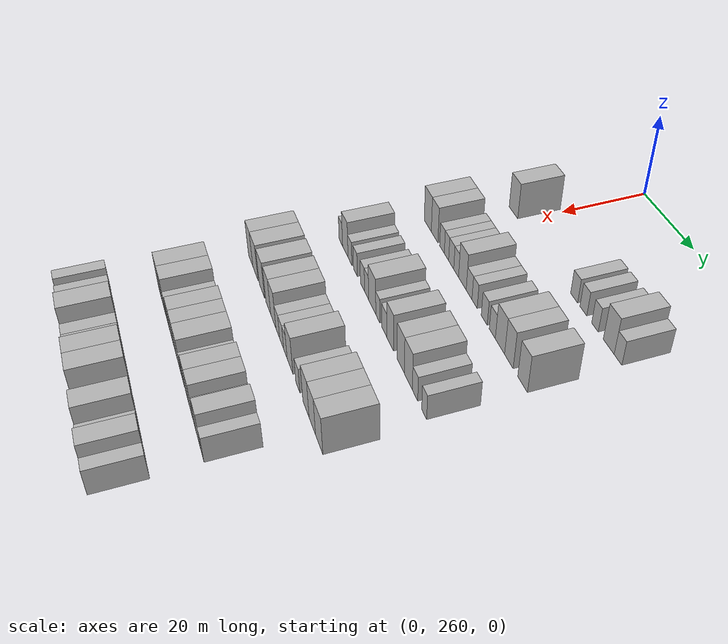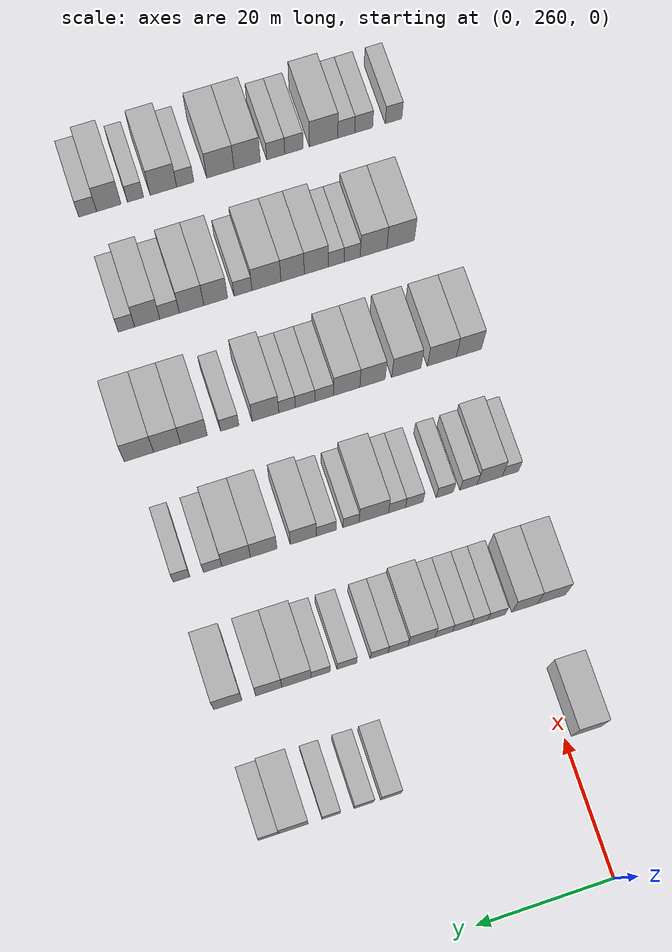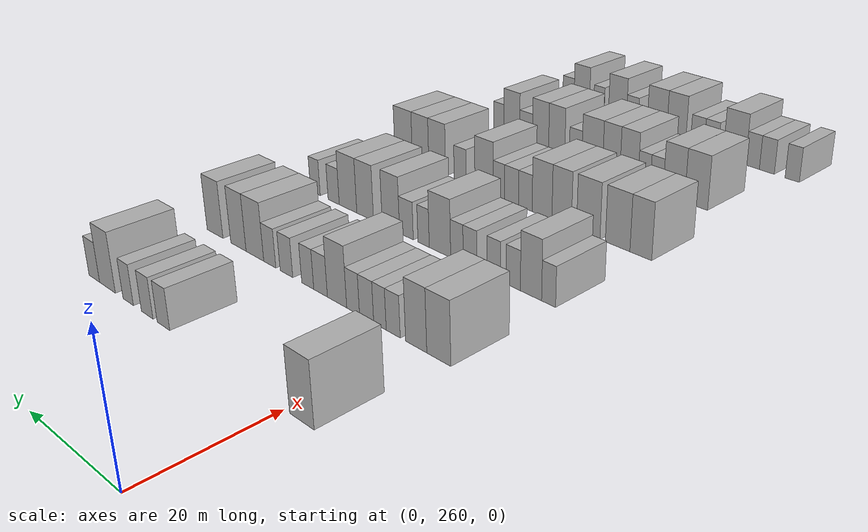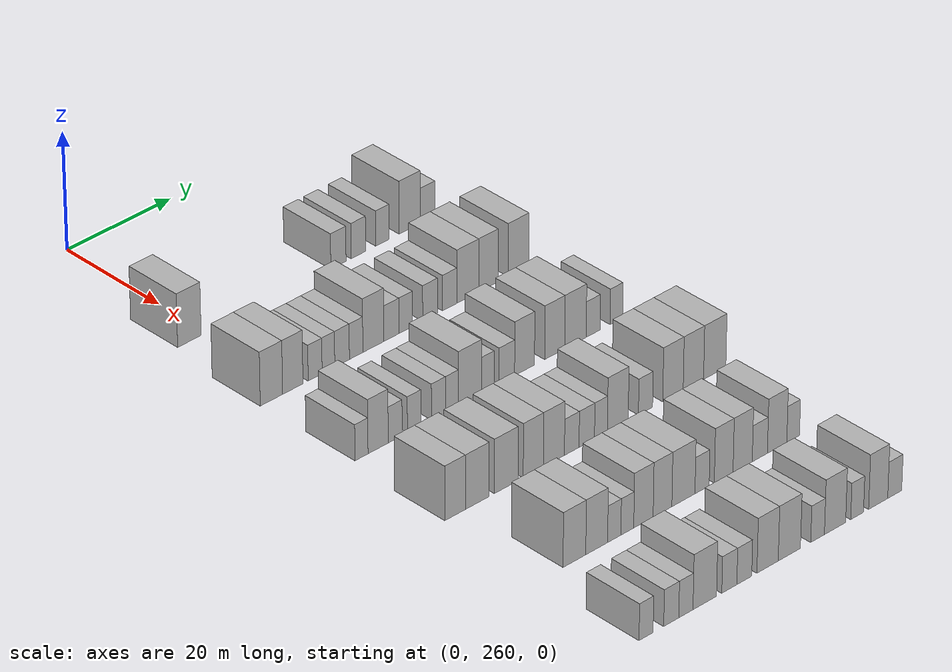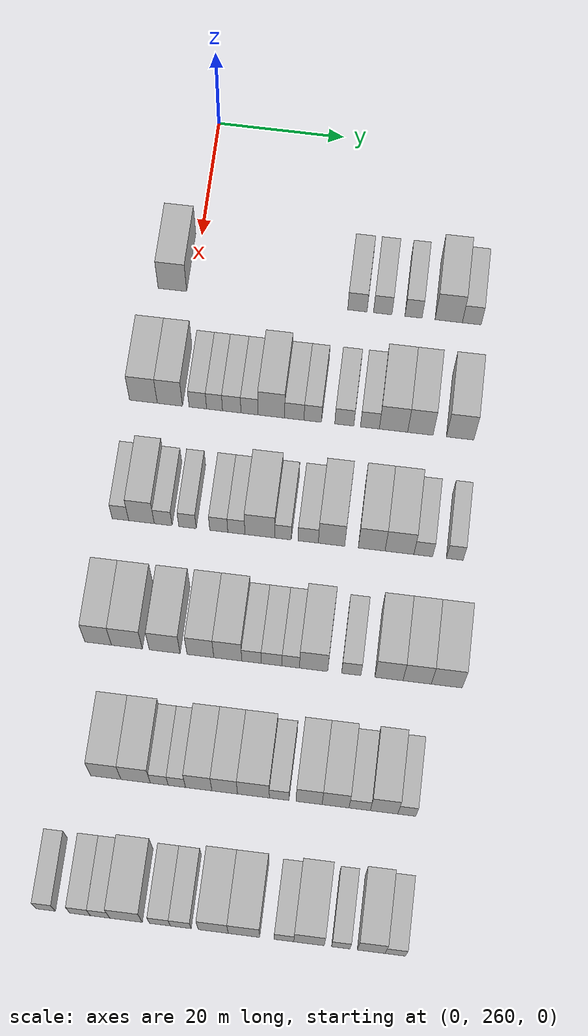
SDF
<sdf version="1.6">
 <world name="default">
  <model name="building_147">
   <static>1</static>
   <pose>25.0000 256.7633 0 0.000000 0.000000 0.000000</pose>
   <link name="link">
    <pose>0 0 4.50 0 0 0</pose>
    <collision name="collision"><geometry><box><size>10.0000 4.4512 9.0000</size></box></geometry></collision>
    <visual name="visual">
     <cast_shadows>0</cast_shadows>
     <geometry><box><size>10.0000 4.4512 9.0000</size></box></geometry>
     <material>
      <script>
       <uri>model://HANNAS_wall/materials/scripts</uri>
       <uri>model://HANNAS_wall/materials/textures</uri>
       <name>vrc/HANNAS_wall</name>
      </script>
     </material>
    </visual>
   </link>
  </model>
  <model name="building_148">
   <static>1</static>
   <pose>25.0000 285.4569 0 0.000000 0.000000 0.000000</pose>
   <link name="link">
    <pose>0 0 3.00 0 0 0</pose>
    <collision name="collision"><geometry><box><size>10.0000 2.9786 6.0000</size></box></geometry></collision>
    <visual name="visual">
     <cast_shadows>0</cast_shadows>
     <geometry><box><size>10.0000 2.9786 6.0000</size></box></geometry>
     <material>
      <script>
       <uri>model://HANNAS_wall/materials/scripts</uri>
       <uri>model://HANNAS_wall/materials/textures</uri>
       <name>vrc/HANNAS_wall</name>
      </script>
     </material>
    </visual>
   </link>
  </model>
  <model name="building_149">
   <static>1</static>
   <pose>25.0000 289.3695 0 0.000000 0.000000 0.000000</pose>
   <link name="link">
    <pose>0 0 3.00 0 0 0</pose>
    <collision name="collision"><geometry><box><size>10.0000 2.8466 6.0000</size></box></geometry></collision>
    <visual name="visual">
     <cast_shadows>0</cast_shadows>
     <geometry><box><size>10.0000 2.8466 6.0000</size></box></geometry>
     <material>
      <script>
       <uri>model://HANNAS_wall/materials/scripts</uri>
       <uri>model://HANNAS_wall/materials/textures</uri>
       <name>vrc/HANNAS_wall</name>
      </script>
     </material>
    </visual>
   </link>
  </model>
  <model name="building_150">
   <static>1</static>
   <pose>25.0000 294.1161 0 0.000000 0.000000 0.000000</pose>
   <link name="link">
    <pose>0 0 3.00 0 0 0</pose>
    <collision name="collision"><geometry><box><size>10.0000 2.6467 6.0000</size></box></geometry></collision>
    <visual name="visual">
     <cast_shadows>0</cast_shadows>
     <geometry><box><size>10.0000 2.6467 6.0000</size></box></geometry>
     <material>
      <script>
       <uri>model://HANNAS_wall/materials/scripts</uri>
       <uri>model://HANNAS_wall/materials/textures</uri>
       <name>vrc/HANNAS_wall</name>
      </script>
     </material>
    </visual>
   </link>
  </model>
  <model name="building_151">
   <static>1</static>
   <pose>25.0000 299.5389 0 0.000000 0.000000 0.000000</pose>
   <link name="link">
    <pose>0 0 4.50 0 0 0</pose>
    <collision name="collision"><geometry><box><size>10.0000 4.1988 9.0000</size></box></geometry></collision>
    <visual name="visual">
     <cast_shadows>0</cast_shadows>
     <geometry><box><size>10.0000 4.1988 9.0000</size></box></geometry>
     <material>
      <script>
       <uri>model://HANNAS_wall/materials/scripts</uri>
       <uri>model://HANNAS_wall/materials/textures</uri>
       <name>vrc/HANNAS_wall</name>
      </script>
     </material>
    </visual>
   </link>
  </model>
  <model name="building_152">
   <static>1</static>
   <pose>25.0000 303.0917 0 0.000000 0.000000 0.000000</pose>
   <link name="link">
    <pose>0 0 3.00 0 0 0</pose>
    <collision name="collision"><geometry><box><size>10.0000 2.9068 6.0000</size></box></geometry></collision>
    <visual name="visual">
     <cast_shadows>0</cast_shadows>
     <geometry><box><size>10.0000 2.9068 6.0000</size></box></geometry>
     <material>
      <script>
       <uri>model://HANNAS_wall/materials/scripts</uri>
       <uri>model://HANNAS_wall/materials/textures</uri>
       <name>vrc/HANNAS_wall</name>
      </script>
     </material>
    </visual>
   </link>
  </model>
  <model name="building_320">
   <static>1</static>
   <pose>44.0000 255.0883 0 0.000000 0.000000 0.000000</pose>
   <link name="link">
    <pose>0 0 4.50 0 0 0</pose>
    <collision name="collision"><geometry><box><size>10.0000 4.2238 9.0000</size></box></geometry></collision>
    <visual name="visual">
     <cast_shadows>0</cast_shadows>
     <geometry><box><size>10.0000 4.2238 9.0000</size></box></geometry>
     <material>
      <script>
       <uri>model://HANNAS_wall/materials/scripts</uri>
       <uri>model://HANNAS_wall/materials/textures</uri>
       <name>vrc/HANNAS_wall</name>
      </script>
     </material>
    </visual>
   </link>
  </model>
  <model name="building_321">
   <static>1</static>
   <pose>44.0000 259.1254 0 0.000000 0.000000 0.000000</pose>
   <link name="link">
    <pose>0 0 4.50 0 0 0</pose>
    <collision name="collision"><geometry><box><size>10.0000 3.8503 9.0000</size></box></geometry></collision>
    <visual name="visual">
     <cast_shadows>0</cast_shadows>
     <geometry><box><size>10.0000 3.8503 9.0000</size></box></geometry>
     <material>
      <script>
       <uri>model://HANNAS_wall/materials/scripts</uri>
       <uri>model://HANNAS_wall/materials/textures</uri>
       <name>vrc/HANNAS_wall</name>
      </script>
     </material>
    </visual>
   </link>
  </model>
  <model name="building_322">
   <static>1</static>
   <pose>44.0000 263.3785 0 0.000000 0.000000 0.000000</pose>
   <link name="link">
    <pose>0 0 3.00 0 0 0</pose>
    <collision name="collision"><geometry><box><size>10.0000 2.6558 6.0000</size></box></geometry></collision>
    <visual name="visual">
     <cast_shadows>0</cast_shadows>
     <geometry><box><size>10.0000 2.6558 6.0000</size></box></geometry>
     <material>
      <script>
       <uri>model://HANNAS_wall/materials/scripts</uri>
       <uri>model://HANNAS_wall/materials/textures</uri>
       <name>vrc/HANNAS_wall</name>
      </script>
     </material>
    </visual>
   </link>
  </model>
  <model name="building_323">
   <static>1</static>
   <pose>44.0000 265.9158 0 0.000000 0.000000 0.000000</pose>
   <link name="link">
    <pose>0 0 3.00 0 0 0</pose>
    <collision name="collision"><geometry><box><size>10.0000 2.4188 6.0000</size></box></geometry></collision>
    <visual name="visual">
     <cast_shadows>0</cast_shadows>
     <geometry><box><size>10.0000 2.4188 6.0000</size></box></geometry>
     <material>
      <script>
       <uri>model://HANNAS_wall/materials/scripts</uri>
       <uri>model://HANNAS_wall/materials/textures</uri>
       <name>vrc/HANNAS_wall</name>
      </script>
     </material>
    </visual>
   </link>
  </model>
  <model name="building_324">
   <static>1</static>
   <pose>44.0000 268.5272 0 0.000000 0.000000 0.000000</pose>
   <link name="link">
    <pose>0 0 3.00 0 0 0</pose>
    <collision name="collision"><geometry><box><size>10.0000 2.8040 6.0000</size></box></geometry></collision>
    <visual name="visual">
     <cast_shadows>0</cast_shadows>
     <geometry><box><size>10.0000 2.8040 6.0000</size></box></geometry>
     <material>
      <script>
       <uri>model://HANNAS_wall/materials/scripts</uri>
       <uri>model://HANNAS_wall/materials/textures</uri>
       <name>vrc/HANNAS_wall</name>
      </script>
     </material>
    </visual>
   </link>
  </model>
  <model name="building_325">
   <static>1</static>
   <pose>44.0000 271.2257 0 0.000000 0.000000 0.000000</pose>
   <link name="link">
    <pose>0 0 3.00 0 0 0</pose>
    <collision name="collision"><geometry><box><size>10.0000 2.5931 6.0000</size></box></geometry></collision>
    <visual name="visual">
     <cast_shadows>0</cast_shadows>
     <geometry><box><size>10.0000 2.5931 6.0000</size></box></geometry>
     <material>
      <script>
       <uri>model://HANNAS_wall/materials/scripts</uri>
       <uri>model://HANNAS_wall/materials/textures</uri>
       <name>vrc/HANNAS_wall</name>
      </script>
     </material>
    </visual>
   </link>
  </model>
  <model name="building_326">
   <static>1</static>
   <pose>44.0000 274.5366 0 0.000000 0.000000 0.000000</pose>
   <link name="link">
    <pose>0 0 4.50 0 0 0</pose>
    <collision name="collision"><geometry><box><size>10.0000 4.0287 9.0000</size></box></geometry></collision>
    <visual name="visual">
     <cast_shadows>0</cast_shadows>
     <geometry><box><size>10.0000 4.0287 9.0000</size></box></geometry>
     <material>
      <script>
       <uri>model://HANNAS_wall/materials/scripts</uri>
       <uri>model://HANNAS_wall/materials/textures</uri>
       <name>vrc/HANNAS_wall</name>
      </script>
     </material>
    </visual>
   </link>
  </model>
  <model name="building_327">
   <static>1</static>
   <pose>44.0000 278.0159 0 0.000000 0.000000 0.000000</pose>
   <link name="link">
    <pose>0 0 3.00 0 0 0</pose>
    <collision name="collision"><geometry><box><size>10.0000 2.9299 6.0000</size></box></geometry></collision>
    <visual name="visual">
     <cast_shadows>0</cast_shadows>
     <geometry><box><size>10.0000 2.9299 6.0000</size></box></geometry>
     <material>
      <script>
       <uri>model://HANNAS_wall/materials/scripts</uri>
       <uri>model://HANNAS_wall/materials/textures</uri>
       <name>vrc/HANNAS_wall</name>
      </script>
     </material>
    </visual>
   </link>
  </model>
  <model name="building_328">
   <static>1</static>
   <pose>44.0000 280.8010 0 0.000000 0.000000 0.000000</pose>
   <link name="link">
    <pose>0 0 3.00 0 0 0</pose>
    <collision name="collision"><geometry><box><size>10.0000 2.6403 6.0000</size></box></geometry></collision>
    <visual name="visual">
     <cast_shadows>0</cast_shadows>
     <geometry><box><size>10.0000 2.6403 6.0000</size></box></geometry>
     <material>
      <script>
       <uri>model://HANNAS_wall/materials/scripts</uri>
       <uri>model://HANNAS_wall/materials/textures</uri>
       <name>vrc/HANNAS_wall</name>
      </script>
     </material>
    </visual>
   </link>
  </model>
  <model name="building_329">
   <static>1</static>
   <pose>44.0000 285.5626 0 0.000000 0.000000 0.000000</pose>
   <link name="link">
    <pose>0 0 3.00 0 0 0</pose>
    <collision name="collision"><geometry><box><size>10.0000 2.8829 6.0000</size></box></geometry></collision>
    <visual name="visual">
     <cast_shadows>0</cast_shadows>
     <geometry><box><size>10.0000 2.8829 6.0000</size></box></geometry>
     <material>
      <script>
       <uri>model://HANNAS_wall/materials/scripts</uri>
       <uri>model://HANNAS_wall/materials/textures</uri>
       <name>vrc/HANNAS_wall</name>
      </script>
     </material>
    </visual>
   </link>
  </model>
  <model name="building_330">
   <static>1</static>
   <pose>44.0000 289.4255 0 0.000000 0.000000 0.000000</pose>
   <link name="link">
    <pose>0 0 3.00 0 0 0</pose>
    <collision name="collision"><geometry><box><size>10.0000 2.8429 6.0000</size></box></geometry></collision>
    <visual name="visual">
     <cast_shadows>0</cast_shadows>
     <geometry><box><size>10.0000 2.8429 6.0000</size></box></geometry>
     <material>
      <script>
       <uri>model://HANNAS_wall/materials/scripts</uri>
       <uri>model://HANNAS_wall/materials/textures</uri>
       <name>vrc/HANNAS_wall</name>
      </script>
     </material>
    </visual>
   </link>
  </model>
  <model name="building_331">
   <static>1</static>
   <pose>44.0000 292.9833 0 0.000000 0.000000 0.000000</pose>
   <link name="link">
    <pose>0 0 4.50 0 0 0</pose>
    <collision name="collision"><geometry><box><size>10.0000 4.2728 9.0000</size></box></geometry></collision>
    <visual name="visual">
     <cast_shadows>0</cast_shadows>
     <geometry><box><size>10.0000 4.2728 9.0000</size></box></geometry>
     <material>
      <script>
       <uri>model://HANNAS_wall/materials/scripts</uri>
       <uri>model://HANNAS_wall/materials/textures</uri>
       <name>vrc/HANNAS_wall</name>
      </script>
     </material>
    </visual>
   </link>
  </model>
  <model name="building_332">
   <static>1</static>
   <pose>44.0000 297.0333 0 0.000000 0.000000 0.000000</pose>
   <link name="link">
    <pose>0 0 4.50 0 0 0</pose>
    <collision name="collision"><geometry><box><size>10.0000 3.8272 9.0000</size></box></geometry></collision>
    <visual name="visual">
     <cast_shadows>0</cast_shadows>
     <geometry><box><size>10.0000 3.8272 9.0000</size></box></geometry>
     <material>
      <script>
       <uri>model://HANNAS_wall/materials/scripts</uri>
       <uri>model://HANNAS_wall/materials/textures</uri>
       <name>vrc/HANNAS_wall</name>
      </script>
     </material>
    </visual>
   </link>
  </model>
  <model name="building_333">
   <static>1</static>
   <pose>44.0000 303.0104 0 0.000000 0.000000 0.000000</pose>
   <link name="link">
    <pose>0 0 4.50 0 0 0</pose>
    <collision name="collision"><geometry><box><size>10.0000 4.1269 9.0000</size></box></geometry></collision>
    <visual name="visual">
     <cast_shadows>0</cast_shadows>
     <geometry><box><size>10.0000 4.1269 9.0000</size></box></geometry>
     <material>
      <script>
       <uri>model://HANNAS_wall/materials/scripts</uri>
       <uri>model://HANNAS_wall/materials/textures</uri>
       <name>vrc/HANNAS_wall</name>
      </script>
     </material>
    </visual>
   </link>
  </model>
  <model name="building_483">
   <static>1</static>
   <pose>63.0000 254.5296 0 0.000000 0.000000 0.000000</pose>
   <link name="link">
    <pose>0 0 3.00 0 0 0</pose>
    <collision name="collision"><geometry><box><size>10.0000 2.4531 6.0000</size></box></geometry></collision>
    <visual name="visual">
     <cast_shadows>0</cast_shadows>
     <geometry><box><size>10.0000 2.4531 6.0000</size></box></geometry>
     <material>
      <script>
       <uri>model://HANNAS_wall/materials/scripts</uri>
       <uri>model://HANNAS_wall/materials/textures</uri>
       <name>vrc/HANNAS_wall</name>
      </script>
     </material>
    </visual>
   </link>
  </model>
  <model name="building_484">
   <static>1</static>
   <pose>63.0000 257.6646 0 0.000000 0.000000 0.000000</pose>
   <link name="link">
    <pose>0 0 4.50 0 0 0</pose>
    <collision name="collision"><geometry><box><size>10.0000 3.8170 9.0000</size></box></geometry></collision>
    <visual name="visual">
     <cast_shadows>0</cast_shadows>
     <geometry><box><size>10.0000 3.8170 9.0000</size></box></geometry>
     <material>
      <script>
       <uri>model://HANNAS_wall/materials/scripts</uri>
       <uri>model://HANNAS_wall/materials/textures</uri>
       <name>vrc/HANNAS_wall</name>
      </script>
     </material>
    </visual>
   </link>
  </model>
  <model name="building_485">
   <static>1</static>
   <pose>63.0000 260.8975 0 0.000000 0.000000 0.000000</pose>
   <link name="link">
    <pose>0 0 3.00 0 0 0</pose>
    <collision name="collision"><geometry><box><size>10.0000 2.6487 6.0000</size></box></geometry></collision>
    <visual name="visual">
     <cast_shadows>0</cast_shadows>
     <geometry><box><size>10.0000 2.6487 6.0000</size></box></geometry>
     <material>
      <script>
       <uri>model://HANNAS_wall/materials/scripts</uri>
       <uri>model://HANNAS_wall/materials/textures</uri>
       <name>vrc/HANNAS_wall</name>
      </script>
     </material>
    </visual>
   </link>
  </model>
  <model name="building_486">
   <static>1</static>
   <pose>63.0000 264.5124 0 0.000000 0.000000 0.000000</pose>
   <link name="link">
    <pose>0 0 3.00 0 0 0</pose>
    <collision name="collision"><geometry><box><size>10.0000 2.5810 6.0000</size></box></geometry></collision>
    <visual name="visual">
     <cast_shadows>0</cast_shadows>
     <geometry><box><size>10.0000 2.5810 6.0000</size></box></geometry>
     <material>
      <script>
       <uri>model://HANNAS_wall/materials/scripts</uri>
       <uri>model://HANNAS_wall/materials/textures</uri>
       <name>vrc/HANNAS_wall</name>
      </script>
     </material>
    </visual>
   </link>
  </model>
  <model name="building_487">
   <static>1</static>
   <pose>63.0000 269.1421 0 0.000000 0.000000 0.000000</pose>
   <link name="link">
    <pose>0 0 3.00 0 0 0</pose>
    <collision name="collision"><geometry><box><size>10.0000 2.6784 6.0000</size></box></geometry></collision>
    <visual name="visual">
     <cast_shadows>0</cast_shadows>
     <geometry><box><size>10.0000 2.6784 6.0000</size></box></geometry>
     <material>
      <script>
       <uri>model://HANNAS_wall/materials/scripts</uri>
       <uri>model://HANNAS_wall/materials/textures</uri>
       <name>vrc/HANNAS_wall</name>
      </script>
     </material>
    </visual>
   </link>
  </model>
  <model name="building_488">
   <static>1</static>
   <pose>63.0000 271.7498 0 0.000000 0.000000 0.000000</pose>
   <link name="link">
    <pose>0 0 3.00 0 0 0</pose>
    <collision name="collision"><geometry><box><size>10.0000 2.5370 6.0000</size></box></geometry></collision>
    <visual name="visual">
     <cast_shadows>0</cast_shadows>
     <geometry><box><size>10.0000 2.5370 6.0000</size></box></geometry>
     <material>
      <script>
       <uri>model://HANNAS_wall/materials/scripts</uri>
       <uri>model://HANNAS_wall/materials/textures</uri>
       <name>vrc/HANNAS_wall</name>
      </script>
     </material>
    </visual>
   </link>
  </model>
  <model name="building_489">
   <static>1</static>
   <pose>63.0000 275.2367 0 0.000000 0.000000 0.000000</pose>
   <link name="link">
    <pose>0 0 4.50 0 0 0</pose>
    <collision name="collision"><geometry><box><size>10.0000 4.4369 9.0000</size></box></geometry></collision>
    <visual name="visual">
     <cast_shadows>0</cast_shadows>
     <geometry><box><size>10.0000 4.4369 9.0000</size></box></geometry>
     <material>
      <script>
       <uri>model://HANNAS_wall/materials/scripts</uri>
       <uri>model://HANNAS_wall/materials/textures</uri>
       <name>vrc/HANNAS_wall</name>
      </script>
     </material>
    </visual>
   </link>
  </model>
  <model name="building_490">
   <static>1</static>
   <pose>63.0000 278.6613 0 0.000000 0.000000 0.000000</pose>
   <link name="link">
    <pose>0 0 3.00 0 0 0</pose>
    <collision name="collision"><geometry><box><size>10.0000 2.4122 6.0000</size></box></geometry></collision>
    <visual name="visual">
     <cast_shadows>0</cast_shadows>
     <geometry><box><size>10.0000 2.4122 6.0000</size></box></geometry>
     <material>
      <script>
       <uri>model://HANNAS_wall/materials/scripts</uri>
       <uri>model://HANNAS_wall/materials/textures</uri>
       <name>vrc/HANNAS_wall</name>
      </script>
     </material>
    </visual>
   </link>
  </model>
  <model name="building_491">
   <static>1</static>
   <pose>63.0000 282.3653 0 0.000000 0.000000 0.000000</pose>
   <link name="link">
    <pose>0 0 3.00 0 0 0</pose>
    <collision name="collision"><geometry><box><size>10.0000 2.9959 6.0000</size></box></geometry></collision>
    <visual name="visual">
     <cast_shadows>0</cast_shadows>
     <geometry><box><size>10.0000 2.9959 6.0000</size></box></geometry>
     <material>
      <script>
       <uri>model://HANNAS_wall/materials/scripts</uri>
       <uri>model://HANNAS_wall/materials/textures</uri>
       <name>vrc/HANNAS_wall</name>
      </script>
     </material>
    </visual>
   </link>
  </model>
  <model name="building_492">
   <static>1</static>
   <pose>63.0000 285.8084 0 0.000000 0.000000 0.000000</pose>
   <link name="link">
    <pose>0 0 4.50 0 0 0</pose>
    <collision name="collision"><geometry><box><size>10.0000 3.8903 9.0000</size></box></geometry></collision>
    <visual name="visual">
     <cast_shadows>0</cast_shadows>
     <geometry><box><size>10.0000 3.8903 9.0000</size></box></geometry>
     <material>
      <script>
       <uri>model://HANNAS_wall/materials/scripts</uri>
       <uri>model://HANNAS_wall/materials/textures</uri>
       <name>vrc/HANNAS_wall</name>
      </script>
     </material>
    </visual>
   </link>
  </model>
  <model name="building_493">
   <static>1</static>
   <pose>63.0000 291.7232 0 0.000000 0.000000 0.000000</pose>
   <link name="link">
    <pose>0 0 4.50 0 0 0</pose>
    <collision name="collision"><geometry><box><size>10.0000 3.9393 9.0000</size></box></geometry></collision>
    <visual name="visual">
     <cast_shadows>0</cast_shadows>
     <geometry><box><size>10.0000 3.9393 9.0000</size></box></geometry>
     <material>
      <script>
       <uri>model://HANNAS_wall/materials/scripts</uri>
       <uri>model://HANNAS_wall/materials/textures</uri>
       <name>vrc/HANNAS_wall</name>
      </script>
     </material>
    </visual>
   </link>
  </model>
  <model name="building_494">
   <static>1</static>
   <pose>63.0000 295.8154 0 0.000000 0.000000 0.000000</pose>
   <link name="link">
    <pose>0 0 4.50 0 0 0</pose>
    <collision name="collision"><geometry><box><size>10.0000 4.2451 9.0000</size></box></geometry></collision>
    <visual name="visual">
     <cast_shadows>0</cast_shadows>
     <geometry><box><size>10.0000 4.2451 9.0000</size></box></geometry>
     <material>
      <script>
       <uri>model://HANNAS_wall/materials/scripts</uri>
       <uri>model://HANNAS_wall/materials/textures</uri>
       <name>vrc/HANNAS_wall</name>
      </script>
     </material>
    </visual>
   </link>
  </model>
  <model name="building_495">
   <static>1</static>
   <pose>63.0000 299.3187 0 0.000000 0.000000 0.000000</pose>
   <link name="link">
    <pose>0 0 3.00 0 0 0</pose>
    <collision name="collision"><geometry><box><size>10.0000 2.7616 6.0000</size></box></geometry></collision>
    <visual name="visual">
     <cast_shadows>0</cast_shadows>
     <geometry><box><size>10.0000 2.7616 6.0000</size></box></geometry>
     <material>
      <script>
       <uri>model://HANNAS_wall/materials/scripts</uri>
       <uri>model://HANNAS_wall/materials/textures</uri>
       <name>vrc/HANNAS_wall</name>
      </script>
     </material>
    </visual>
   </link>
  </model>
  <model name="building_496">
   <static>1</static>
   <pose>63.0000 303.9354 0 0.000000 0.000000 0.000000</pose>
   <link name="link">
    <pose>0 0 3.00 0 0 0</pose>
    <collision name="collision"><geometry><box><size>10.0000 2.4717 6.0000</size></box></geometry></collision>
    <visual name="visual">
     <cast_shadows>0</cast_shadows>
     <geometry><box><size>10.0000 2.4717 6.0000</size></box></geometry>
     <material>
      <script>
       <uri>model://HANNAS_wall/materials/scripts</uri>
       <uri>model://HANNAS_wall/materials/textures</uri>
       <name>vrc/HANNAS_wall</name>
      </script>
     </material>
    </visual>
   </link>
  </model>
  <model name="building_652">
   <static>1</static>
   <pose>82.0000 254.2300 0 0.000000 0.000000 0.000000</pose>
   <link name="link">
    <pose>0 0 4.50 0 0 0</pose>
    <collision name="collision"><geometry><box><size>10.0000 3.8685 9.0000</size></box></geometry></collision>
    <visual name="visual">
     <cast_shadows>0</cast_shadows>
     <geometry><box><size>10.0000 3.8685 9.0000</size></box></geometry>
     <material>
      <script>
       <uri>model://HANNAS_wall/materials/scripts</uri>
       <uri>model://HANNAS_wall/materials/textures</uri>
       <name>vrc/HANNAS_wall</name>
      </script>
     </material>
    </visual>
   </link>
  </model>
  <model name="building_653">
   <static>1</static>
   <pose>82.0000 258.4117 0 0.000000 0.000000 0.000000</pose>
   <link name="link">
    <pose>0 0 4.50 0 0 0</pose>
    <collision name="collision"><geometry><box><size>10.0000 4.4950 9.0000</size></box></geometry></collision>
    <visual name="visual">
     <cast_shadows>0</cast_shadows>
     <geometry><box><size>10.0000 4.4950 9.0000</size></box></geometry>
     <material>
      <script>
       <uri>model://HANNAS_wall/materials/scripts</uri>
       <uri>model://HANNAS_wall/materials/textures</uri>
       <name>vrc/HANNAS_wall</name>
      </script>
     </material>
    </visual>
   </link>
  </model>
  <model name="building_654">
   <static>1</static>
   <pose>82.0000 263.8985 0 0.000000 0.000000 0.000000</pose>
   <link name="link">
    <pose>0 0 4.50 0 0 0</pose>
    <collision name="collision"><geometry><box><size>10.0000 4.4785 9.0000</size></box></geometry></collision>
    <visual name="visual">
     <cast_shadows>0</cast_shadows>
     <geometry><box><size>10.0000 4.4785 9.0000</size></box></geometry>
     <material>
      <script>
       <uri>model://HANNAS_wall/materials/scripts</uri>
       <uri>model://HANNAS_wall/materials/textures</uri>
       <name>vrc/HANNAS_wall</name>
      </script>
     </material>
    </visual>
   </link>
  </model>
  <model name="building_655">
   <static>1</static>
   <pose>82.0000 269.0734 0 0.000000 0.000000 0.000000</pose>
   <link name="link">
    <pose>0 0 4.50 0 0 0</pose>
    <collision name="collision"><geometry><box><size>10.0000 3.8713 9.0000</size></box></geometry></collision>
    <visual name="visual">
     <cast_shadows>0</cast_shadows>
     <geometry><box><size>10.0000 3.8713 9.0000</size></box></geometry>
     <material>
      <script>
       <uri>model://HANNAS_wall/materials/scripts</uri>
       <uri>model://HANNAS_wall/materials/textures</uri>
       <name>vrc/HANNAS_wall</name>
      </script>
     </material>
    </visual>
   </link>
  </model>
  <model name="building_656">
   <static>1</static>
   <pose>82.0000 273.0311 0 0.000000 0.000000 0.000000</pose>
   <link name="link">
    <pose>0 0 4.50 0 0 0</pose>
    <collision name="collision"><geometry><box><size>10.0000 4.0441 9.0000</size></box></geometry></collision>
    <visual name="visual">
     <cast_shadows>0</cast_shadows>
     <geometry><box><size>10.0000 4.0441 9.0000</size></box></geometry>
     <material>
      <script>
       <uri>model://HANNAS_wall/materials/scripts</uri>
       <uri>model://HANNAS_wall/materials/textures</uri>
       <name>vrc/HANNAS_wall</name>
      </script>
     </material>
    </visual>
   </link>
  </model>
  <model name="building_657">
   <static>1</static>
   <pose>82.0000 276.4654 0 0.000000 0.000000 0.000000</pose>
   <link name="link">
    <pose>0 0 3.00 0 0 0</pose>
    <collision name="collision"><geometry><box><size>10.0000 2.8244 6.0000</size></box></geometry></collision>
    <visual name="visual">
     <cast_shadows>0</cast_shadows>
     <geometry><box><size>10.0000 2.8244 6.0000</size></box></geometry>
     <material>
      <script>
       <uri>model://HANNAS_wall/materials/scripts</uri>
       <uri>model://HANNAS_wall/materials/textures</uri>
       <name>vrc/HANNAS_wall</name>
      </script>
     </material>
    </visual>
   </link>
  </model>
  <model name="building_658">
   <static>1</static>
   <pose>82.0000 279.3700 0 0.000000 0.000000 0.000000</pose>
   <link name="link">
    <pose>0 0 3.00 0 0 0</pose>
    <collision name="collision"><geometry><box><size>10.0000 2.9848 6.0000</size></box></geometry></collision>
    <visual name="visual">
     <cast_shadows>0</cast_shadows>
     <geometry><box><size>10.0000 2.9848 6.0000</size></box></geometry>
     <material>
      <script>
       <uri>model://HANNAS_wall/materials/scripts</uri>
       <uri>model://HANNAS_wall/materials/textures</uri>
       <name>vrc/HANNAS_wall</name>
      </script>
     </material>
    </visual>
   </link>
  </model>
  <model name="building_659">
   <static>1</static>
   <pose>82.0000 282.1179 0 0.000000 0.000000 0.000000</pose>
   <link name="link">
    <pose>0 0 3.00 0 0 0</pose>
    <collision name="collision"><geometry><box><size>10.0000 2.5111 6.0000</size></box></geometry></collision>
    <visual name="visual">
     <cast_shadows>0</cast_shadows>
     <geometry><box><size>10.0000 2.5111 6.0000</size></box></geometry>
     <material>
      <script>
       <uri>model://HANNAS_wall/materials/scripts</uri>
       <uri>model://HANNAS_wall/materials/textures</uri>
       <name>vrc/HANNAS_wall</name>
      </script>
     </material>
    </visual>
   </link>
  </model>
  <model name="building_660">
   <static>1</static>
   <pose>82.0000 285.4032 0 0.000000 0.000000 0.000000</pose>
   <link name="link">
    <pose>0 0 4.50 0 0 0</pose>
    <collision name="collision"><geometry><box><size>10.0000 4.0595 9.0000</size></box></geometry></collision>
    <visual name="visual">
     <cast_shadows>0</cast_shadows>
     <geometry><box><size>10.0000 4.0595 9.0000</size></box></geometry>
     <material>
      <script>
       <uri>model://HANNAS_wall/materials/scripts</uri>
       <uri>model://HANNAS_wall/materials/textures</uri>
       <name>vrc/HANNAS_wall</name>
      </script>
     </material>
    </visual>
   </link>
  </model>
  <model name="building_661">
   <static>1</static>
   <pose>82.0000 290.8212 0 0.000000 0.000000 0.000000</pose>
   <link name="link">
    <pose>0 0 3.00 0 0 0</pose>
    <collision name="collision"><geometry><box><size>10.0000 2.7765 6.0000</size></box></geometry></collision>
    <visual name="visual">
     <cast_shadows>0</cast_shadows>
     <geometry><box><size>10.0000 2.7765 6.0000</size></box></geometry>
     <material>
      <script>
       <uri>model://HANNAS_wall/materials/scripts</uri>
       <uri>model://HANNAS_wall/materials/textures</uri>
       <name>vrc/HANNAS_wall</name>
      </script>
     </material>
    </visual>
   </link>
  </model>
  <model name="building_662">
   <static>1</static>
   <pose>82.0000 296.2278 0 0.000000 0.000000 0.000000</pose>
   <link name="link">
    <pose>0 0 4.50 0 0 0</pose>
    <collision name="collision"><geometry><box><size>10.0000 4.0367 9.0000</size></box></geometry></collision>
    <visual name="visual">
     <cast_shadows>0</cast_shadows>
     <geometry><box><size>10.0000 4.0367 9.0000</size></box></geometry>
     <material>
      <script>
       <uri>model://HANNAS_wall/materials/scripts</uri>
       <uri>model://HANNAS_wall/materials/textures</uri>
       <name>vrc/HANNAS_wall</name>
      </script>
     </material>
    </visual>
   </link>
  </model>
  <model name="building_663">
   <static>1</static>
   <pose>82.0000 300.2729 0 0.000000 0.000000 0.000000</pose>
   <link name="link">
    <pose>0 0 4.50 0 0 0</pose>
    <collision name="collision"><geometry><box><size>10.0000 4.0534 9.0000</size></box></geometry></collision>
    <visual name="visual">
     <cast_shadows>0</cast_shadows>
     <geometry><box><size>10.0000 4.0534 9.0000</size></box></geometry>
     <material>
      <script>
       <uri>model://HANNAS_wall/materials/scripts</uri>
       <uri>model://HANNAS_wall/materials/textures</uri>
       <name>vrc/HANNAS_wall</name>
      </script>
     </material>
    </visual>
   </link>
  </model>
  <model name="building_664">
   <static>1</static>
   <pose>82.0000 304.5183 0 0.000000 0.000000 0.000000</pose>
   <link name="link">
    <pose>0 0 4.50 0 0 0</pose>
    <collision name="collision"><geometry><box><size>10.0000 4.4374 9.0000</size></box></geometry></collision>
    <visual name="visual">
     <cast_shadows>0</cast_shadows>
     <geometry><box><size>10.0000 4.4374 9.0000</size></box></geometry>
     <material>
      <script>
       <uri>model://HANNAS_wall/materials/scripts</uri>
       <uri>model://HANNAS_wall/materials/textures</uri>
       <name>vrc/HANNAS_wall</name>
      </script>
     </material>
    </visual>
   </link>
  </model>
  <model name="building_830">
   <static>1</static>
   <pose>101.0000 258.3471 0 0.000000 0.000000 0.000000</pose>
   <link name="link">
    <pose>0 0 4.50 0 0 0</pose>
    <collision name="collision"><geometry><box><size>10.0000 4.2906 9.0000</size></box></geometry></collision>
    <visual name="visual">
     <cast_shadows>0</cast_shadows>
     <geometry><box><size>10.0000 4.2906 9.0000</size></box></geometry>
     <material>
      <script>
       <uri>model://HANNAS_wall/materials/scripts</uri>
       <uri>model://HANNAS_wall/materials/textures</uri>
       <name>vrc/HANNAS_wall</name>
      </script>
     </material>
    </visual>
   </link>
  </model>
  <model name="building_831">
   <static>1</static>
   <pose>101.0000 262.5662 0 0.000000 0.000000 0.000000</pose>
   <link name="link">
    <pose>0 0 4.50 0 0 0</pose>
    <collision name="collision"><geometry><box><size>10.0000 4.1475 9.0000</size></box></geometry></collision>
    <visual name="visual">
     <cast_shadows>0</cast_shadows>
     <geometry><box><size>10.0000 4.1475 9.0000</size></box></geometry>
     <material>
      <script>
       <uri>model://HANNAS_wall/materials/scripts</uri>
       <uri>model://HANNAS_wall/materials/textures</uri>
       <name>vrc/HANNAS_wall</name>
      </script>
     </material>
    </visual>
   </link>
  </model>
  <model name="building_832">
   <static>1</static>
   <pose>101.0000 265.9051 0 0.000000 0.000000 0.000000</pose>
   <link name="link">
    <pose>0 0 3.00 0 0 0</pose>
    <collision name="collision"><geometry><box><size>10.0000 2.5301 6.0000</size></box></geometry></collision>
    <visual name="visual">
     <cast_shadows>0</cast_shadows>
     <geometry><box><size>10.0000 2.5301 6.0000</size></box></geometry>
     <material>
      <script>
       <uri>model://HANNAS_wall/materials/scripts</uri>
       <uri>model://HANNAS_wall/materials/textures</uri>
       <name>vrc/HANNAS_wall</name>
      </script>
     </material>
    </visual>
   </link>
  </model>
  <model name="building_833">
   <static>1</static>
   <pose>101.0000 268.3973 0 0.000000 0.000000 0.000000</pose>
   <link name="link">
    <pose>0 0 3.00 0 0 0</pose>
    <collision name="collision"><geometry><box><size>10.0000 2.4544 6.0000</size></box></geometry></collision>
    <visual name="visual">
     <cast_shadows>0</cast_shadows>
     <geometry><box><size>10.0000 2.4544 6.0000</size></box></geometry>
     <material>
      <script>
       <uri>model://HANNAS_wall/materials/scripts</uri>
       <uri>model://HANNAS_wall/materials/textures</uri>
       <name>vrc/HANNAS_wall</name>
      </script>
     </material>
    </visual>
   </link>
  </model>
  <model name="building_834">
   <static>1</static>
   <pose>101.0000 271.4834 0 0.000000 0.000000 0.000000</pose>
   <link name="link">
    <pose>0 0 4.50 0 0 0</pose>
    <collision name="collision"><geometry><box><size>10.0000 3.7179 9.0000</size></box></geometry></collision>
    <visual name="visual">
     <cast_shadows>0</cast_shadows>
     <geometry><box><size>10.0000 3.7179 9.0000</size></box></geometry>
     <material>
      <script>
       <uri>model://HANNAS_wall/materials/scripts</uri>
       <uri>model://HANNAS_wall/materials/textures</uri>
       <name>vrc/HANNAS_wall</name>
      </script>
     </material>
    </visual>
   </link>
  </model>
  <model name="building_835">
   <static>1</static>
   <pose>101.0000 275.1477 0 0.000000 0.000000 0.000000</pose>
   <link name="link">
    <pose>0 0 4.50 0 0 0</pose>
    <collision name="collision"><geometry><box><size>10.0000 3.6106 9.0000</size></box></geometry></collision>
    <visual name="visual">
     <cast_shadows>0</cast_shadows>
     <geometry><box><size>10.0000 3.6106 9.0000</size></box></geometry>
     <material>
      <script>
       <uri>model://HANNAS_wall/materials/scripts</uri>
       <uri>model://HANNAS_wall/materials/textures</uri>
       <name>vrc/HANNAS_wall</name>
      </script>
     </material>
    </visual>
   </link>
  </model>
  <model name="building_836">
   <static>1</static>
   <pose>101.0000 279.1887 0 0.000000 0.000000 0.000000</pose>
   <link name="link">
    <pose>0 0 4.50 0 0 0</pose>
    <collision name="collision"><geometry><box><size>10.0000 4.4715 9.0000</size></box></geometry></collision>
    <visual name="visual">
     <cast_shadows>0</cast_shadows>
     <geometry><box><size>10.0000 4.4715 9.0000</size></box></geometry>
     <material>
      <script>
       <uri>model://HANNAS_wall/materials/scripts</uri>
       <uri>model://HANNAS_wall/materials/textures</uri>
       <name>vrc/HANNAS_wall</name>
      </script>
     </material>
    </visual>
   </link>
  </model>
  <model name="building_837">
   <static>1</static>
   <pose>101.0000 282.8040 0 0.000000 0.000000 0.000000</pose>
   <link name="link">
    <pose>0 0 3.00 0 0 0</pose>
    <collision name="collision"><geometry><box><size>10.0000 2.7591 6.0000</size></box></geometry></collision>
    <visual name="visual">
     <cast_shadows>0</cast_shadows>
     <geometry><box><size>10.0000 2.7591 6.0000</size></box></geometry>
     <material>
      <script>
       <uri>model://HANNAS_wall/materials/scripts</uri>
       <uri>model://HANNAS_wall/materials/textures</uri>
       <name>vrc/HANNAS_wall</name>
      </script>
     </material>
    </visual>
   </link>
  </model>
  <model name="building_838">
   <static>1</static>
   <pose>101.0000 287.0127 0 0.000000 0.000000 0.000000</pose>
   <link name="link">
    <pose>0 0 4.50 0 0 0</pose>
    <collision name="collision"><geometry><box><size>10.0000 3.6583 9.0000</size></box></geometry></collision>
    <visual name="visual">
     <cast_shadows>0</cast_shadows>
     <geometry><box><size>10.0000 3.6583 9.0000</size></box></geometry>
     <material>
      <script>
       <uri>model://HANNAS_wall/materials/scripts</uri>
       <uri>model://HANNAS_wall/materials/textures</uri>
       <name>vrc/HANNAS_wall</name>
      </script>
     </material>
    </visual>
   </link>
  </model>
  <model name="building_839">
   <static>1</static>
   <pose>101.0000 290.7278 0 0.000000 0.000000 0.000000</pose>
   <link name="link">
    <pose>0 0 4.50 0 0 0</pose>
    <collision name="collision"><geometry><box><size>10.0000 3.7719 9.0000</size></box></geometry></collision>
    <visual name="visual">
     <cast_shadows>0</cast_shadows>
     <geometry><box><size>10.0000 3.7719 9.0000</size></box></geometry>
     <material>
      <script>
       <uri>model://HANNAS_wall/materials/scripts</uri>
       <uri>model://HANNAS_wall/materials/textures</uri>
       <name>vrc/HANNAS_wall</name>
      </script>
     </material>
    </visual>
   </link>
  </model>
  <model name="building_840">
   <static>1</static>
   <pose>101.0000 294.1052 0 0.000000 0.000000 0.000000</pose>
   <link name="link">
    <pose>0 0 3.00 0 0 0</pose>
    <collision name="collision"><geometry><box><size>10.0000 2.9830 6.0000</size></box></geometry></collision>
    <visual name="visual">
     <cast_shadows>0</cast_shadows>
     <geometry><box><size>10.0000 2.9830 6.0000</size></box></geometry>
     <material>
      <script>
       <uri>model://HANNAS_wall/materials/scripts</uri>
       <uri>model://HANNAS_wall/materials/textures</uri>
       <name>vrc/HANNAS_wall</name>
      </script>
     </material>
    </visual>
   </link>
  </model>
  <model name="building_841">
   <static>1</static>
   <pose>101.0000 297.5187 0 0.000000 0.000000 0.000000</pose>
   <link name="link">
    <pose>0 0 4.50 0 0 0</pose>
    <collision name="collision"><geometry><box><size>10.0000 3.8439 9.0000</size></box></geometry></collision>
    <visual name="visual">
     <cast_shadows>0</cast_shadows>
     <geometry><box><size>10.0000 3.8439 9.0000</size></box></geometry>
     <material>
      <script>
       <uri>model://HANNAS_wall/materials/scripts</uri>
       <uri>model://HANNAS_wall/materials/textures</uri>
       <name>vrc/HANNAS_wall</name>
      </script>
     </material>
    </visual>
   </link>
  </model>
  <model name="building_842">
   <static>1</static>
   <pose>101.0000 300.6996 0 0.000000 0.000000 0.000000</pose>
   <link name="link">
    <pose>0 0 3.00 0 0 0</pose>
    <collision name="collision"><geometry><box><size>10.0000 2.5179 6.0000</size></box></geometry></collision>
    <visual name="visual">
     <cast_shadows>0</cast_shadows>
     <geometry><box><size>10.0000 2.5179 6.0000</size></box></geometry>
     <material>
      <script>
       <uri>model://HANNAS_wall/materials/scripts</uri>
       <uri>model://HANNAS_wall/materials/textures</uri>
       <name>vrc/HANNAS_wall</name>
      </script>
     </material>
    </visual>
   </link>
  </model>
  <model name="building_1009">
   <static>1</static>
   <pose>120.0000 253.0437 0 0.000000 0.000000 0.000000</pose>
   <link name="link">
    <pose>0 0 3.00 0 0 0</pose>
    <collision name="collision"><geometry><box><size>10.0000 2.6376 6.0000</size></box></geometry></collision>
    <visual name="visual">
     <cast_shadows>0</cast_shadows>
     <geometry><box><size>10.0000 2.6376 6.0000</size></box></geometry>
     <material>
      <script>
       <uri>model://HANNAS_wall/materials/scripts</uri>
       <uri>model://HANNAS_wall/materials/textures</uri>
       <name>vrc/HANNAS_wall</name>
      </script>
     </material>
    </visual>
   </link>
  </model>
  <model name="building_1010">
   <static>1</static>
   <pose>120.0000 257.7832 0 0.000000 0.000000 0.000000</pose>
   <link name="link">
    <pose>0 0 3.00 0 0 0</pose>
    <collision name="collision"><geometry><box><size>10.0000 2.8416 6.0000</size></box></geometry></collision>
    <visual name="visual">
     <cast_shadows>0</cast_shadows>
     <geometry><box><size>10.0000 2.8416 6.0000</size></box></geometry>
     <material>
      <script>
       <uri>model://HANNAS_wall/materials/scripts</uri>
       <uri>model://HANNAS_wall/materials/textures</uri>
       <name>vrc/HANNAS_wall</name>
      </script>
     </material>
    </visual>
   </link>
  </model>
  <model name="building_1011">
   <static>1</static>
   <pose>120.0000 260.5467 0 0.000000 0.000000 0.000000</pose>
   <link name="link">
    <pose>0 0 3.00 0 0 0</pose>
    <collision name="collision"><geometry><box><size>10.0000 2.6853 6.0000</size></box></geometry></collision>
    <visual name="visual">
     <cast_shadows>0</cast_shadows>
     <geometry><box><size>10.0000 2.6853 6.0000</size></box></geometry>
     <material>
      <script>
       <uri>model://HANNAS_wall/materials/scripts</uri>
       <uri>model://HANNAS_wall/materials/textures</uri>
       <name>vrc/HANNAS_wall</name>
      </script>
     </material>
    </visual>
   </link>
  </model>
  <model name="building_1012">
   <static>1</static>
   <pose>120.0000 264.1275 0 0.000000 0.000000 0.000000</pose>
   <link name="link">
    <pose>0 0 4.50 0 0 0</pose>
    <collision name="collision"><geometry><box><size>10.0000 4.4763 9.0000</size></box></geometry></collision>
    <visual name="visual">
     <cast_shadows>0</cast_shadows>
     <geometry><box><size>10.0000 4.4763 9.0000</size></box></geometry>
     <material>
      <script>
       <uri>model://HANNAS_wall/materials/scripts</uri>
       <uri>model://HANNAS_wall/materials/textures</uri>
       <name>vrc/HANNAS_wall</name>
      </script>
     </material>
    </visual>
   </link>
  </model>
  <model name="building_1013">
   <static>1</static>
   <pose>120.0000 268.8053 0 0.000000 0.000000 0.000000</pose>
   <link name="link">
    <pose>0 0 3.00 0 0 0</pose>
    <collision name="collision"><geometry><box><size>10.0000 2.8794 6.0000</size></box></geometry></collision>
    <visual name="visual">
     <cast_shadows>0</cast_shadows>
     <geometry><box><size>10.0000 2.8794 6.0000</size></box></geometry>
     <material>
      <script>
       <uri>model://HANNAS_wall/materials/scripts</uri>
       <uri>model://HANNAS_wall/materials/textures</uri>
       <name>vrc/HANNAS_wall</name>
      </script>
     </material>
    </visual>
   </link>
  </model>
  <model name="building_1014">
   <static>1</static>
   <pose>120.0000 271.6702 0 0.000000 0.000000 0.000000</pose>
   <link name="link">
    <pose>0 0 3.00 0 0 0</pose>
    <collision name="collision"><geometry><box><size>10.0000 2.8503 6.0000</size></box></geometry></collision>
    <visual name="visual">
     <cast_shadows>0</cast_shadows>
     <geometry><box><size>10.0000 2.8503 6.0000</size></box></geometry>
     <material>
      <script>
       <uri>model://HANNAS_wall/materials/scripts</uri>
       <uri>model://HANNAS_wall/materials/textures</uri>
       <name>vrc/HANNAS_wall</name>
      </script>
     </material>
    </visual>
   </link>
  </model>
  <model name="building_1015">
   <static>1</static>
   <pose>120.0000 276.1495 0 0.000000 0.000000 0.000000</pose>
   <link name="link">
    <pose>0 0 4.50 0 0 0</pose>
    <collision name="collision"><geometry><box><size>10.0000 4.1084 9.0000</size></box></geometry></collision>
    <visual name="visual">
     <cast_shadows>0</cast_shadows>
     <geometry><box><size>10.0000 4.1084 9.0000</size></box></geometry>
     <material>
      <script>
       <uri>model://HANNAS_wall/materials/scripts</uri>
       <uri>model://HANNAS_wall/materials/textures</uri>
       <name>vrc/HANNAS_wall</name>
      </script>
     </material>
    </visual>
   </link>
  </model>
  <model name="building_1016">
   <static>1</static>
   <pose>120.0000 280.3576 0 0.000000 0.000000 0.000000</pose>
   <link name="link">
    <pose>0 0 4.50 0 0 0</pose>
    <collision name="collision"><geometry><box><size>10.0000 4.3078 9.0000</size></box></geometry></collision>
    <visual name="visual">
     <cast_shadows>0</cast_shadows>
     <geometry><box><size>10.0000 4.3078 9.0000</size></box></geometry>
     <material>
      <script>
       <uri>model://HANNAS_wall/materials/scripts</uri>
       <uri>model://HANNAS_wall/materials/textures</uri>
       <name>vrc/HANNAS_wall</name>
      </script>
     </material>
    </visual>
   </link>
  </model>
  <model name="building_1017">
   <static>1</static>
   <pose>120.0000 285.8460 0 0.000000 0.000000 0.000000</pose>
   <link name="link">
    <pose>0 0 3.00 0 0 0</pose>
    <collision name="collision"><geometry><box><size>10.0000 2.6690 6.0000</size></box></geometry></collision>
    <visual name="visual">
     <cast_shadows>0</cast_shadows>
     <geometry><box><size>10.0000 2.6690 6.0000</size></box></geometry>
     <material>
      <script>
       <uri>model://HANNAS_wall/materials/scripts</uri>
       <uri>model://HANNAS_wall/materials/textures</uri>
       <name>vrc/HANNAS_wall</name>
      </script>
     </material>
    </visual>
   </link>
  </model>
  <model name="building_1018">
   <static>1</static>
   <pose>120.0000 289.2601 0 0.000000 0.000000 0.000000</pose>
   <link name="link">
    <pose>0 0 4.50 0 0 0</pose>
    <collision name="collision"><geometry><box><size>10.0000 4.1592 9.0000</size></box></geometry></collision>
    <visual name="visual">
     <cast_shadows>0</cast_shadows>
     <geometry><box><size>10.0000 4.1592 9.0000</size></box></geometry>
     <material>
      <script>
       <uri>model://HANNAS_wall/materials/scripts</uri>
       <uri>model://HANNAS_wall/materials/textures</uri>
       <name>vrc/HANNAS_wall</name>
      </script>
     </material>
    </visual>
   </link>
  </model>
  <model name="building_1019">
   <static>1</static>
   <pose>120.0000 293.6016 0 0.000000 0.000000 0.000000</pose>
   <link name="link">
    <pose>0 0 3.00 0 0 0</pose>
    <collision name="collision"><geometry><box><size>10.0000 2.5239 6.0000</size></box></geometry></collision>
    <visual name="visual">
     <cast_shadows>0</cast_shadows>
     <geometry><box><size>10.0000 2.5239 6.0000</size></box></geometry>
     <material>
      <script>
       <uri>model://HANNAS_wall/materials/scripts</uri>
       <uri>model://HANNAS_wall/materials/textures</uri>
       <name>vrc/HANNAS_wall</name>
      </script>
     </material>
    </visual>
   </link>
  </model>
  <model name="building_1020">
   <static>1</static>
   <pose>120.0000 297.7526 0 0.000000 0.000000 0.000000</pose>
   <link name="link">
    <pose>0 0 4.50 0 0 0</pose>
    <collision name="collision"><geometry><box><size>10.0000 3.7782 9.0000</size></box></geometry></collision>
    <visual name="visual">
     <cast_shadows>0</cast_shadows>
     <geometry><box><size>10.0000 3.7782 9.0000</size></box></geometry>
     <material>
      <script>
       <uri>model://HANNAS_wall/materials/scripts</uri>
       <uri>model://HANNAS_wall/materials/textures</uri>
       <name>vrc/HANNAS_wall</name>
      </script>
     </material>
    </visual>
   </link>
  </model>
  <model name="building_1021">
   <static>1</static>
   <pose>120.0000 301.0298 0 0.000000 0.000000 0.000000</pose>
   <link name="link">
    <pose>0 0 3.00 0 0 0</pose>
    <collision name="collision"><geometry><box><size>10.0000 2.7762 6.0000</size></box></geometry></collision>
    <visual name="visual">
     <cast_shadows>0</cast_shadows>
     <geometry><box><size>10.0000 2.7762 6.0000</size></box></geometry>
     <material>
      <script>
       <uri>model://HANNAS_wall/materials/scripts</uri>
       <uri>model://HANNAS_wall/materials/textures</uri>
       <name>vrc/HANNAS_wall</name>
      </script>
     </material>
    </visual>
   </link>
  </model>
 </world>
</sdf>
